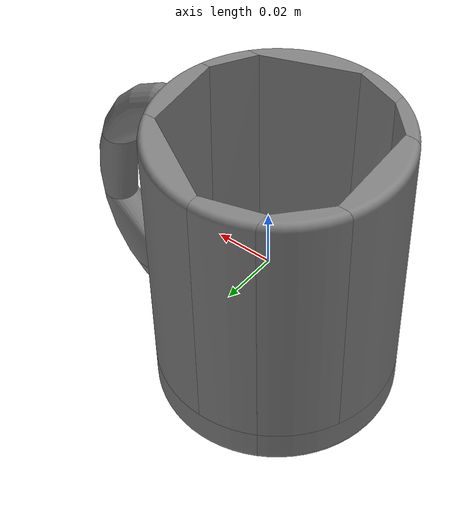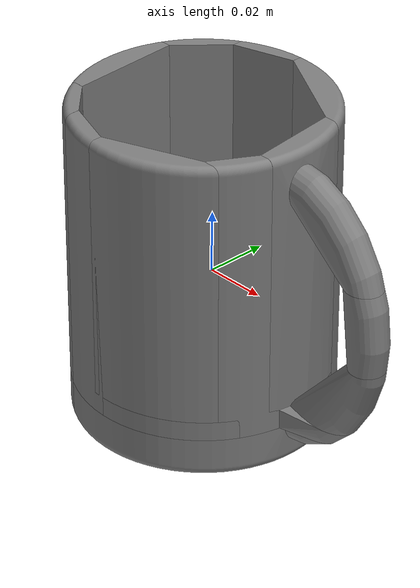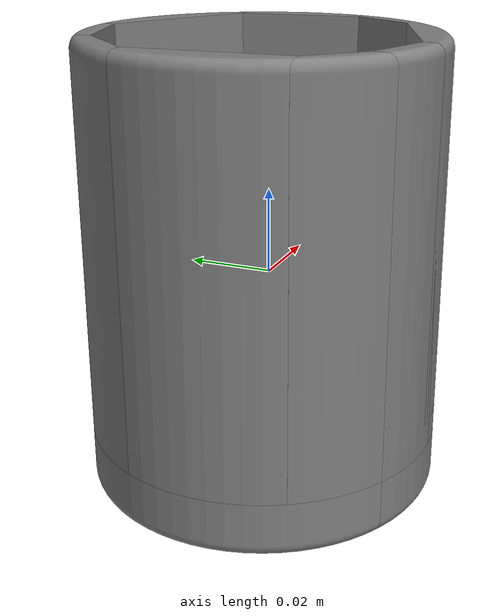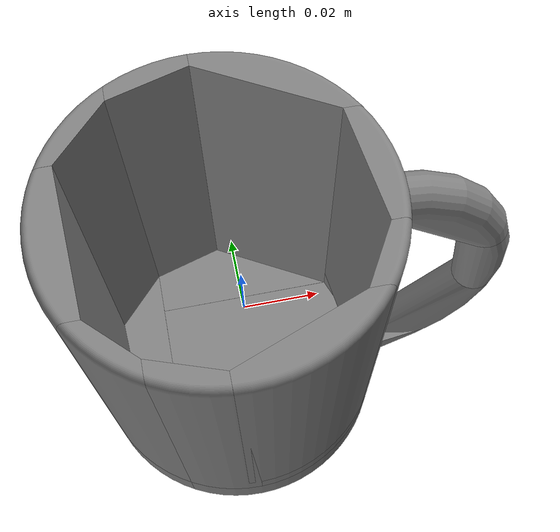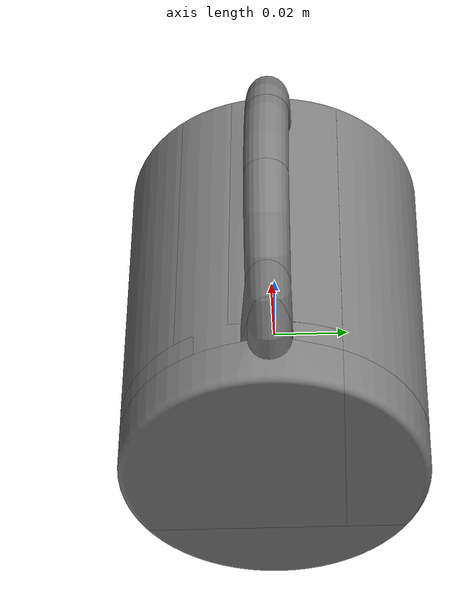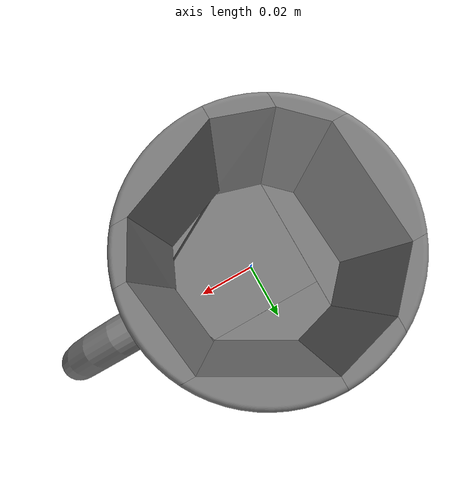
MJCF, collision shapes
<mujoco model="mug">
  <compiler meshdir="."/>

  <asset>
    <mesh name="mug" file="mug.stl"/>
    <mesh name="mug_collision_hull_000" file="mug_collision_hull_000.stl"/>
    <mesh name="mug_collision_hull_001" file="mug_collision_hull_001.stl"/>
    <mesh name="mug_collision_hull_002" file="mug_collision_hull_002.stl"/>
    <mesh name="mug_collision_hull_003" file="mug_collision_hull_003.stl"/>
    <mesh name="mug_collision_hull_004" file="mug_collision_hull_004.stl"/>
    <mesh name="mug_collision_hull_005" file="mug_collision_hull_005.stl"/>
    <mesh name="mug_collision_hull_006" file="mug_collision_hull_006.stl"/>
    <mesh name="mug_collision_hull_007" file="mug_collision_hull_007.stl"/>
    <mesh name="mug_collision_hull_008" file="mug_collision_hull_008.stl"/>
    <mesh name="mug_collision_hull_009" file="mug_collision_hull_009.stl"/>
    <mesh name="mug_collision_hull_010" file="mug_collision_hull_010.stl"/>
    <mesh name="mug_collision_hull_011" file="mug_collision_hull_011.stl"/>
    <mesh name="mug_collision_hull_012" file="mug_collision_hull_012.stl"/>
    <mesh name="mug_collision_hull_013" file="mug_collision_hull_013.stl"/>
    <mesh name="mug_collision_hull_014" file="mug_collision_hull_014.stl"/>
    <mesh name="mug_collision_hull_015" file="mug_collision_hull_015.stl"/>
    <mesh name="mug_collision_hull_016" file="mug_collision_hull_016.stl"/>
    <mesh name="mug_collision_hull_017" file="mug_collision_hull_017.stl"/>
    <mesh name="mug_collision_hull_018" file="mug_collision_hull_018.stl"/>
  </asset>

  <worldbody>
    <body name="object">
      <freejoint name="object_joint"/>
      <geom name="object_visual" type="mesh" mesh="mug"
            contype="0" conaffinity="0" group="2" rgba="0.9 0.9 0.8 1" mass="0"/>
      <geom name="mug_collision_hull_000_collision" type="mesh" mesh="mug_collision_hull_000"
            mass="0.0026" condim="6" friction="1.0 0.002 0.002" priority="1"/>
      <geom name="mug_collision_hull_001_collision" type="mesh" mesh="mug_collision_hull_001"
            mass="0.0026" condim="6" friction="1.0 0.002 0.002" priority="1"/>
      <geom name="mug_collision_hull_002_collision" type="mesh" mesh="mug_collision_hull_002"
            mass="0.0026" condim="6" friction="1.0 0.002 0.002" priority="1"/>
      <geom name="mug_collision_hull_003_collision" type="mesh" mesh="mug_collision_hull_003"
            mass="0.0026" condim="6" friction="1.0 0.002 0.002" priority="1"/>
      <geom name="mug_collision_hull_004_collision" type="mesh" mesh="mug_collision_hull_004"
            mass="0.0026" condim="6" friction="1.0 0.002 0.002" priority="1"/>
      <geom name="mug_collision_hull_005_collision" type="mesh" mesh="mug_collision_hull_005"
            mass="0.0026" condim="6" friction="1.0 0.002 0.002" priority="1"/>
      <geom name="mug_collision_hull_006_collision" type="mesh" mesh="mug_collision_hull_006"
            mass="0.0026" condim="6" friction="1.0 0.002 0.002" priority="1"/>
      <geom name="mug_collision_hull_007_collision" type="mesh" mesh="mug_collision_hull_007"
            mass="0.0026" condim="6" friction="1.0 0.002 0.002" priority="1"/>
      <geom name="mug_collision_hull_008_collision" type="mesh" mesh="mug_collision_hull_008"
            mass="0.0026" condim="6" friction="1.0 0.002 0.002" priority="1"/>
      <geom name="mug_collision_hull_009_collision" type="mesh" mesh="mug_collision_hull_009"
            mass="0.0026" condim="6" friction="1.0 0.002 0.002" priority="1"/>
      <geom name="mug_collision_hull_010_collision" type="mesh" mesh="mug_collision_hull_010"
            mass="0.0026" condim="6" friction="1.0 0.002 0.002" priority="1"/>
      <geom name="mug_collision_hull_011_collision" type="mesh" mesh="mug_collision_hull_011"
            mass="0.0026" condim="6" friction="1.0 0.002 0.002" priority="1"/>
      <geom name="mug_collision_hull_012_collision" type="mesh" mesh="mug_collision_hull_012"
            mass="0.0026" condim="6" friction="1.0 0.002 0.002" priority="1"/>
      <geom name="mug_collision_hull_013_collision" type="mesh" mesh="mug_collision_hull_013"
            mass="0.0026" condim="6" friction="1.0 0.002 0.002" priority="1"/>
      <geom name="mug_collision_hull_014_collision" type="mesh" mesh="mug_collision_hull_014"
            mass="0.0026" condim="6" friction="1.0 0.002 0.002" priority="1"/>
      <geom name="mug_collision_hull_015_collision" type="mesh" mesh="mug_collision_hull_015"
            mass="0.0026" condim="6" friction="1.0 0.002 0.002" priority="1"/>
      <geom name="mug_collision_hull_016_collision" type="mesh" mesh="mug_collision_hull_016"
            mass="0.0026" condim="6" friction="1.0 0.002 0.002" priority="1"/>
      <geom name="mug_collision_hull_017_collision" type="mesh" mesh="mug_collision_hull_017"
            mass="0.0026" condim="6" friction="1.0 0.002 0.002" priority="1"/>
      <geom name="mug_collision_hull_018_collision" type="mesh" mesh="mug_collision_hull_018"
            mass="0.0026" condim="6" friction="1.0 0.002 0.002" priority="1"/>
    </body>
  </worldbody>
</mujoco>
